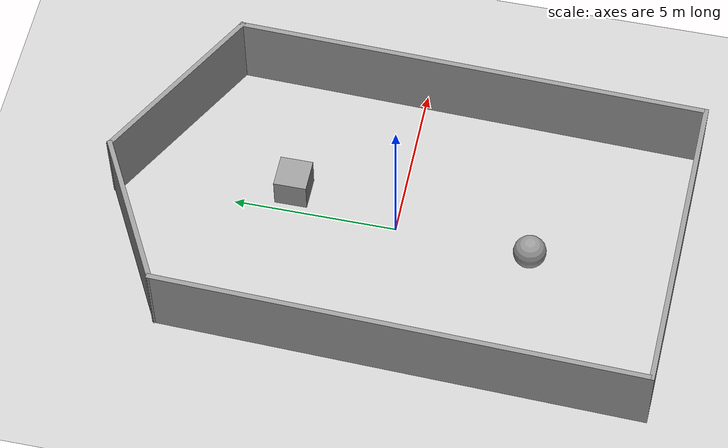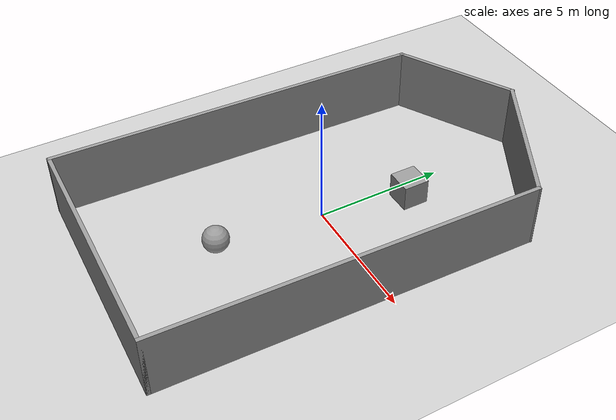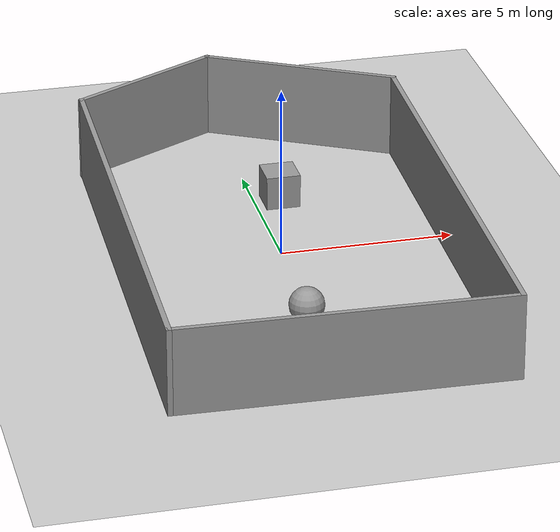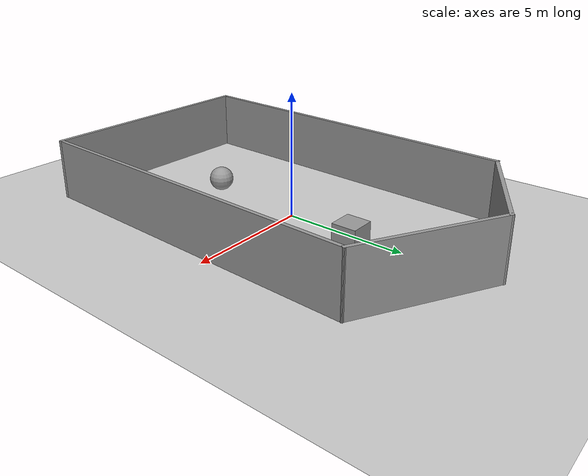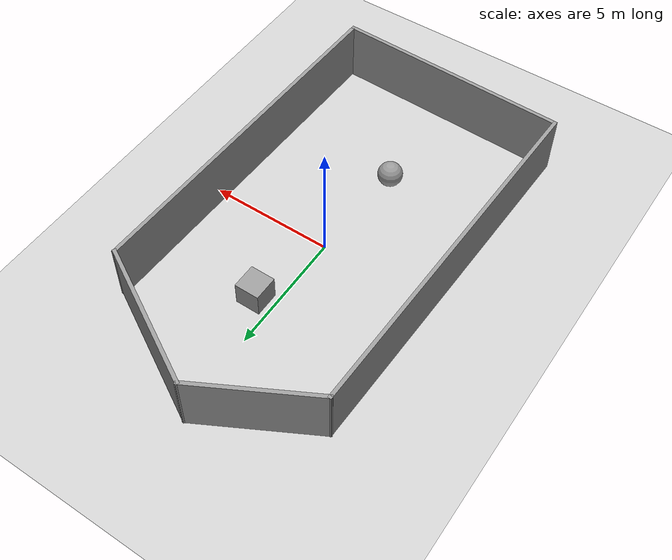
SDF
<sdf version="1.6">
 <world name="default">
  <light name="sun" type="directional">
   <pose>0 0 10 0 -0 0</pose>
   <diffuse>0.8 0.8 0.8 1</diffuse>
   <specular>0.2 0.2 0.2 1</specular>
   <attenuation>
    <range>1000</range>
    <constant>0.9</constant>
    <linear>0.01</linear>
    <quadratic>0.001</quadratic>
   </attenuation>
   <direction>-0.5 0.1 -0.9</direction>
  </light>
  <model name="ground_plane">
   <static>1</static>
   <link name="link">
    <collision name="collision">
     <geometry><plane><normal>0 0 1</normal><size>100 100</size></plane></geometry>
     <surface>
      <contact><collide_bitmask>65535</collide_bitmask></contact>
      <friction><ode><mu>100</mu><mu2>50</mu2></ode></friction>
     </surface>
    </collision>
    <visual name="visual">
     <cast_shadows>0</cast_shadows>
     <geometry><plane><normal>0 0 1</normal><size>100 100</size></plane></geometry>
     <material>
      <script><uri>file://media/materials/scripts/gazebo.material</uri><name>Gazebo/Grey</name></script>
     </material>
    </visual>
   </link>
  </model>
  <gravity>0 0 -9.8</gravity>
  <magnetic_field>6e-06 2.3e-05 -4.2e-05</magnetic_field>
  <atmosphere type="adiabatic"/>
  <physics name="default_physics" default="0" type="ode">
   <max_step_size>0.001</max_step_size>
   <real_time_factor>1</real_time_factor>
   <real_time_update_rate>1000</real_time_update_rate>
  </physics>
  <scene><ambient>0.4 0.4 0.4 1</ambient><background>0.7 0.7 0.7 1</background><shadows>1</shadows></scene>
  <audio><device>default</device></audio>
  <spherical_coordinates>
   <surface_model>EARTH_WGS84</surface_model>
   <latitude_deg>0</latitude_deg>
   <longitude_deg>0</longitude_deg>
   <elevation>0</elevation>
   <heading_deg>0</heading_deg>
  </spherical_coordinates>
  <model name="empty_simple_env">
   <pose>-0.023184 0.098089 0 0 0 -1.59833</pose>
   <link name="Wall_2">
    <collision name="Wall_2_Collision">
     <geometry><box><size>14.5 0.15 2.5</size></box></geometry>
     <pose>0 0 1.25 0 -0 0</pose>
    </collision>
    <visual name="Wall_2_Visual">
     <pose>0 0 1.25 0 -0 0</pose>
     <geometry><box><size>14.5 0.15 2.5</size></box></geometry>
     <material>
      <script><uri>file://media/materials/scripts/gazebo.material</uri><name>Gazebo/Grey</name></script>
      <ambient>1 1 1 1</ambient>
     </material>
     <meta><layer>0</layer></meta>
    </visual>
    <pose>1.35122 4.67566 0 0 -0 0</pose>
   </link>
   <link name="Wall_3">
    <collision name="Wall_3_Collision">
     <geometry><box><size>9.5 0.15 2.5</size></box></geometry>
     <pose>0 0 1.25 0 -0 0</pose>
    </collision>
    <visual name="Wall_3_Visual">
     <pose>0 0 1.25 0 -0 0</pose>
     <geometry><box><size>9.5 0.15 2.5</size></box></geometry>
     <material>
      <script><uri>file://media/materials/scripts/gazebo.material</uri><name>Gazebo/Grey</name></script>
      <ambient>1 1 1 1</ambient>
     </material>
     <meta><layer>0</layer></meta>
    </visual>
    <pose>8.52623 0.000661 0 0 -0 -1.5708</pose>
   </link>
   <link name="Wall_4">
    <collision name="Wall_4_Collision">
     <geometry><box><size>14.75 0.15 2.5</size></box></geometry>
     <pose>0 0 1.25 0 -0 0</pose>
    </collision>
    <visual name="Wall_4_Visual">
     <pose>0 0 1.25 0 -0 0</pose>
     <geometry><box><size>14.75 0.15 2.5</size></box></geometry>
     <material>
      <script><uri>file://media/materials/scripts/gazebo.material</uri><name>Gazebo/Grey</name></script>
      <ambient>1 1 1 1</ambient>
     </material>
     <meta><layer>0</layer></meta>
    </visual>
    <pose>1.22622 -4.67434 0 0 -0 3.14159</pose>
   </link>
   <link name="Wall_5">
    <collision name="Wall_5_Collision">
     <geometry><box><size>5 0.15 2.5</size></box></geometry>
     <pose>0 0 1.25 0 -0 0</pose>
    </collision>
    <visual name="Wall_5_Visual">
     <pose>0 0 1.25 0 -0 0</pose>
     <geometry><box><size>5 0.15 2.5</size></box></geometry>
     <material>
      <script><uri>file://media/materials/scripts/gazebo.material</uri><name>Gazebo/Grey</name></script>
      <ambient>1 1 1 1</ambient>
     </material>
     <meta><layer>0</layer></meta>
    </visual>
    <pose>-7.28627 -2.57423 0 0 -0 2.0944</pose>
   </link>
   <link name="Wall_6">
    <collision name="Wall_6_Collision">
     <geometry><box><size>5.95309 0.15 2.5</size></box></geometry>
     <pose>0 0 1.25 0 -0 0</pose>
    </collision>
    <visual name="Wall_6_Visual">
     <pose>0 0 1.25 0 -0 0</pose>
     <geometry><box><size>5.95309 0.15 2.5</size></box></geometry>
     <material>
      <script><uri>file://media/materials/scripts/gazebo.material</uri><name>Gazebo/Grey</name></script>
      <ambient>1 1 1 1</ambient>
     </material>
     <meta><layer>0</layer></meta>
    </visual>
    <pose>-7.16127 2.10077 0 0 -0 1.09172</pose>
   </link>
   <static>1</static>
  </model>
  <model name="unit_box">
   <static>1</static>
   <pose>0.742843 3.3151 0.499995 -1e-05 -0 0</pose>
   <link name="link">
    <inertial>
     <mass>1</mass>
     <inertia>
      <ixx>0.166667</ixx>
      <ixy>0</ixy>
      <ixz>0</ixz>
      <iyy>0.166667</iyy>
      <iyz>0</iyz>
      <izz>0.166667</izz>
     </inertia>
    </inertial>
    <collision name="collision"><geometry><box><size>1 1 1</size></box></geometry></collision>
    <visual name="visual">
     <geometry><box><size>1 1 1</size></box></geometry>
     <material>
      <script><name>Gazebo/Grey</name><uri>file://media/materials/scripts/gazebo.material</uri></script>
     </material>
    </visual>
   </link>
  </model>
  <model name="unit_sphere">
   <static>1</static>
   <pose>-0.272479 -4.11561 0.5 0 -0 0</pose>
   <link name="link">
    <inertial>
     <mass>1</mass>
     <inertia><ixx>0.1</ixx><ixy>0</ixy><ixz>0</ixz><iyy>0.1</iyy><iyz>0</iyz><izz>0.1</izz></inertia>
    </inertial>
    <collision name="collision"><geometry><sphere><radius>0.5</radius></sphere></geometry></collision>
    <visual name="visual">
     <geometry><sphere><radius>0.5</radius></sphere></geometry>
     <material>
      <script><name>Gazebo/Grey</name><uri>file://media/materials/scripts/gazebo.material</uri></script>
     </material>
    </visual>
   </link>
  </model>
 </world>
</sdf>
